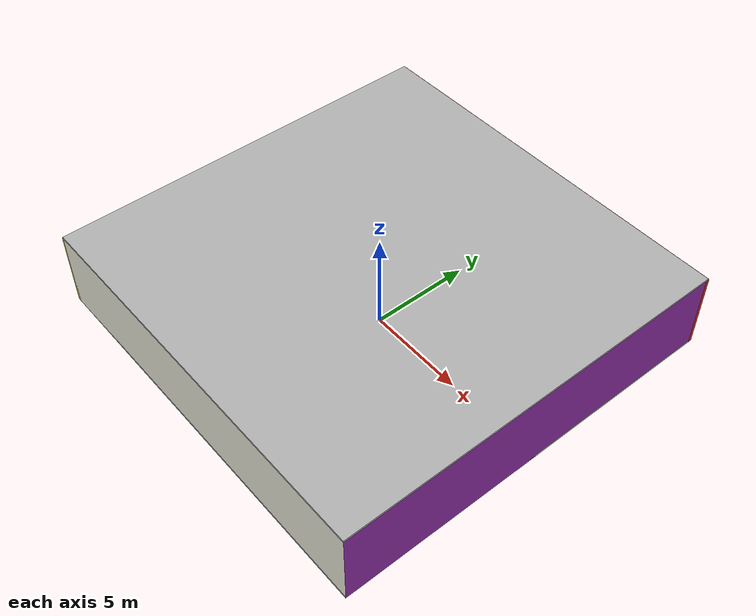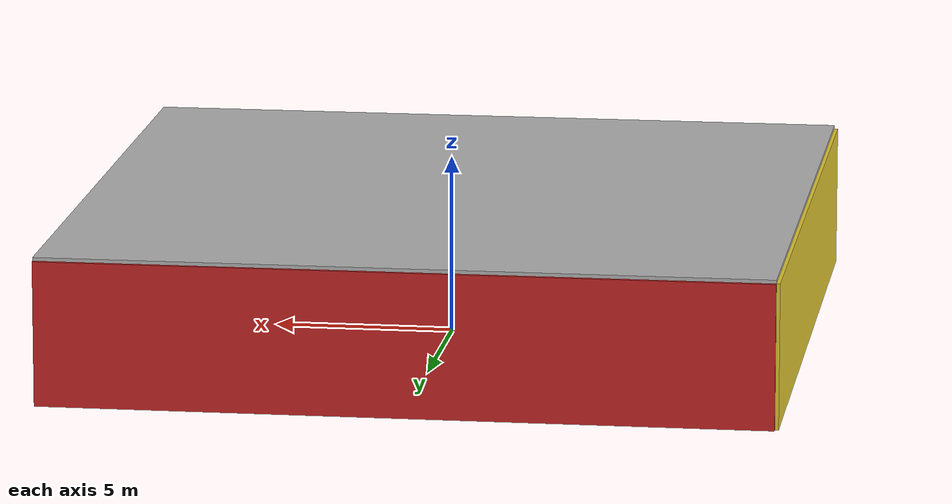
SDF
<sdf version="1.4">
 <world name="default">
  <physics type="ode">
   <max_step_size>0.001</max_step_size>
   <real_time_factor>1</real_time_factor>
   <real_time_update_rate>1000</real_time_update_rate>
   <gravity>0 0 -9.8</gravity>
  </physics>
  <scene><ambient>0.4 0.4 0.4 1</ambient><background>0.7 0.7 0.7 1</background><shadows>1</shadows></scene>
  <model name="Surrounding">
   <static>1</static>
   <link name="Ceiling">
    <collision name="Ceiling_Collision"><geometry><box><size>20 20 0.1</size></box></geometry></collision>
    <visual name="Ceiling_Visual">
     <geometry><box><size>20 20 0.1</size></box></geometry>
     <material>
      <script><uri>file://media/materials/scripts/gazebo.material</uri><name>Gazebo/PioneerBody</name></script>
     </material>
    </visual>
    <pose>0 0 4.05 0 0 0</pose>
   </link>
   <link name="Wall_South">
    <collision name="Wall_South_Collision">
     <geometry><box><size>20 0 4</size></box></geometry>
     <pose>0 0 2 0 -0 0</pose>
    </collision>
    <visual name="Wall_South_Visual">
     <pose>0 0 2 0 -0 0</pose>
     <geometry><box><size>20 0 4</size></box></geometry>
     <material>
      <script><uri>file://media/materials/scripts/gazebo.material</uri><name>Gazebo/PaintedWall</name></script>
     </material>
    </visual>
    <velocity_decay><linear>0</linear><angular>0</angular></velocity_decay>
    <pose>0 -10 0 0 -0 0</pose>
   </link>
   <link name="Wall_East">
    <collision name="Wall_21_Collision">
     <geometry><box><size>20 0 4</size></box></geometry>
     <pose>0 0 2 0 -0 0</pose>
    </collision>
    <visual name="Wall_21_Visual">
     <pose>0 0 2 0 -0 0</pose>
     <geometry><box><size>20 0 4</size></box></geometry>
     <material>
      <script><uri>file://media/materials/scripts/gazebo.material</uri><name>Gazebo/PurpleGlow</name></script>
     </material>
    </visual>
    <velocity_decay><linear>0</linear><angular>0</angular></velocity_decay>
    <pose>10 0 0 0 -0 1.5708</pose>
   </link>
   <link name="Wall_North">
    <collision name="Wall_22_Collision">
     <geometry><box><size>20 0.2 4</size></box></geometry>
     <pose>0 0 2 0 -0 0</pose>
    </collision>
    <visual name="Wall_22_Visual">
     <pose>0 0 2 0 -0 0</pose>
     <geometry><box><size>20 0.2 4</size></box></geometry>
     <material>
      <script><uri>file://media/materials/scripts/gazebo.material</uri><name>Gazebo/Red</name></script>
     </material>
    </visual>
    <velocity_decay><linear>0</linear><angular>0</angular></velocity_decay>
    <pose>0 10 0 0 -0 0</pose>
   </link>
   <link name="Wall_West">
    <collision name="Wall_23_Collision">
     <geometry><box><size>20 0.2 4</size></box></geometry>
     <pose>0 0 2 0 -0 0</pose>
    </collision>
    <visual name="Wall_23_Visual">
     <pose>0 0 2 0 -0 0</pose>
     <geometry><box><size>20 0.2 4</size></box></geometry>
     <material>
      <script><uri>file://media/materials/scripts/gazebo.material</uri><name>Gazebo/ZincYellow</name></script>
     </material>
    </visual>
    <velocity_decay><linear>0</linear><angular>0</angular></velocity_decay>
    <pose>-10 0 0 0 0 -1.5708</pose>
   </link>
   <link name="Ground_link">
    <collision name="collision">
     <pose>0 0 .05 0 -0 0</pose>
     <geometry><box><size>20 20 0.1</size></box></geometry>
    </collision>
    <visual name="visual">
     <pose>0 0 .05 0 -0 0</pose>
     <geometry><box><size>20 20 0.1</size></box></geometry>
     <material>
      <script><uri>file://media/materials/scripts/gazebo.material</uri><name>Gazebo/CloudySky</name></script>
     </material>
    </visual>
   </link>
   <static>1</static>
  </model>
  <spherical_coordinates>
   <surface_model>EARTH_WGS84</surface_model>
   <latitude_deg>0</latitude_deg>
   <longitude_deg>0</longitude_deg>
   <elevation>0</elevation>
   <heading_deg>0</heading_deg>
  </spherical_coordinates>
  <light name="lightball_0" type="diffuse">
   <diffuse>0.8 0.8 0.8 1</diffuse>
   <specular>0.2 0.2 0.2 1</specular>
   <attenuation>
    <range>100</range>
    <constant>0.7</constant>
    <linear>0.01</linear>
    <quadratic>0.001</quadratic>
   </attenuation>
   <direction>-0.5 0.1 -0.9</direction>
   <pose>2.05657497176 2.42225109342 1.89962428459 0 0 0</pose>
  </light>
  <light name="lightball_1" type="diffuse">
   <diffuse>0.8 0.8 0.8 1</diffuse>
   <specular>0.2 0.2 0.2 1</specular>
   <attenuation>
    <range>100</range>
    <constant>0.7</constant>
    <linear>0.01</linear>
    <quadratic>0.001</quadratic>
   </attenuation>
   <direction>-0.5 0.1 -0.9</direction>
   <pose>5.36199896861 7.34956327278 1.38108575092 0 0 0</pose>
  </light>
  <light name="lightball_2" type="diffuse">
   <diffuse>0.8 0.8 0.8 1</diffuse>
   <specular>0.2 0.2 0.2 1</specular>
   <attenuation>
    <range>100</range>
    <constant>0.7</constant>
    <linear>0.01</linear>
    <quadratic>0.001</quadratic>
   </attenuation>
   <direction>-0.5 0.1 -0.9</direction>
   <pose>6.2553272548 4.77966992327 2.33598062053 0 0 0</pose>
  </light>
  <light name="lightball_3" type="diffuse">
   <diffuse>0.8 0.8 0.8 1</diffuse>
   <specular>0.2 0.2 0.2 1</specular>
   <attenuation>
    <range>100</range>
    <constant>0.7</constant>
    <linear>0.01</linear>
    <quadratic>0.001</quadratic>
   </attenuation>
   <direction>-0.5 0.1 -0.9</direction>
   <pose>7.19218878861 0.738622542358 1.62123937928 0 0 0</pose>
  </light>
  <light name="lightball_4" type="diffuse">
   <diffuse>0.8 0.8 0.8 1</diffuse>
   <specular>0.2 0.2 0.2 1</specular>
   <attenuation>
    <range>100</range>
    <constant>0.7</constant>
    <linear>0.01</linear>
    <quadratic>0.001</quadratic>
   </attenuation>
   <direction>-0.5 0.1 -0.9</direction>
   <pose>-5.03457423003 8.58999622289 1.28679521203 0 0 0</pose>
  </light>
  <include><uri>model://cabinet</uri><pose>-7.05218736372 -6.72480582826 0 0 0 0.0552318030013</pose></include>
  <include><uri>model://table</uri><pose>-8.02063558741 -4.38969895936 0 0 0 1.98933206012</pose></include>
  <include>
   <uri>model://robocup_3Dsim_goal</uri>
   <pose>-7.67648241154 6.89423296023 0 0 0 1.50871071911</pose>
  </include>
  <include><uri>model://cabinet</uri><pose>-1.86262620116 5.29804155789 0 0 0 1.02226081001</pose></include>
  <include>
   <uri>model://construction_cone</uri>
   <pose>1.50867402218 -8.17182606962 0 0 0 0.918995344666</pose>
  </include>
  <include>
   <uri>model://robocup_3Dsim_goal</uri>
   <pose>2.24863021054 -0.73812986223 0 0 0 0.474954653798</pose>
  </include>
  <include>
   <uri>model://construction_cone</uri>
   <pose>4.27543467667 -0.863374952473 0 0 0 2.52483265825</pose>
  </include>
  <include><uri>model://cabinet</uri><pose>4.67878287713 1.75202854878 0 0 0 2.19360277532</pose></include>
 </world>
</sdf>

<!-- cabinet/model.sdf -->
<sdf version="1.5">
  <model name="cabinet">
    <static>true</static>
    <link name="cabinet_bottom_plate">
      <inertial>
        <pose>0 0 -1 0 0 0</pose>
        <inertia>
          <ixx>2.050000</ixx>
          <ixy>0</ixy>
          <ixz>0</ixz>
          <iyy>2.050000</iyy>
          <iyz>0</iyz>
          <izz>2.050000</izz>
        </inertia>
        <mass>25.000000</mass>
      </inertial>
      <collision name="cabinet_bottom_plate_geom">
        <pose>0 0 0.010000 0 0 0</pose>
        <geometry>
          <box>
            <size>0.450000 0.450000 0.020000</size>
          </box>
        </geometry>
      </collision>
      <visual name="cabinet_bottom_plate_geom_visual">
        <pose>0 0 0.010000 0 0 0</pose>
        <geometry>
          <box>
            <size>0.450000 0.450000 0.020000</size>
          </box>
        </geometry>
        <material>
          <script>
            <uri>model://media/materials/scripts/gazebo.material</uri>
            <name>Gazebo/Wood</name>
          </script>
        </material>
      </visual>
      <collision name="cabinet_bottom_plate_geom_cabinet_back_plate">
        <pose>0.235000 0 0.510000 0 0 0</pose>
        <geometry>
          <box>
            <size>0.020000 0.450000 1.020000</size>
          </box>
        </geometry>
      </collision>
      <visual name="cabinet_bottom_plate_geom_cabinet_back_plate_visual">
        <pose>0.235000 0 0.510000 0 0 0</pose>
        <geometry>
          <box>
            <size>0.020000 0.450000 1.020000</size>
          </box>
        </geometry>
        <material>
          <script>
            <uri>model://media/materials/scripts/gazebo.material</uri>
            <name>Gazebo/Wood</name>
          </script>
        </material>
      </visual>
      <collision name="cabinet_bottom_plate_geom_cabinet_left_plate">
        <pose>0 0.235000 0.510000 0 0 0</pose>
        <geometry>
          <box>
            <size>0.450000 0.020000 1.020000</size>
          </box>
        </geometry>
      </collision>
      <visual name="cabinet_bottom_plate_geom_cabinet_left_plate_visual">
        <pose>0 0.235000 0.510000 0 0 0</pose>
        <geometry>
          <box>
            <size>0.450000 0.020000 1.020000</size>
          </box>
        </geometry>
        <material>
          <script>
            <uri>model://media/materials/scripts/gazebo.material</uri>
            <name>Gazebo/Wood</name>
          </script>
        </material>
      </visual>
      <collision name="cabinet_bottom_plate_geom_cabinet_middle_plate">
        <pose>0 0 0.510000 0 0 0</pose>
        <geometry>
          <box>
            <size>0.450000 0.450000 0.020000</size>
          </box>
        </geometry>
      </collision>
      <visual name="cabinet_bottom_plate_geom_cabinet_middle_plate_visual">
        <pose>0 0 0.510000 0 0 0</pose>
        <geometry>
          <box>
            <size>0.450000 0.450000 0.020000</size>
          </box>
        </geometry>
        <material>
          <script>
            <uri>model://media/materials/scripts/gazebo.material</uri>
            <name>Gazebo/Wood</name>
          </script>
        </material>
      </visual>
      <collision name="cabinet_bottom_plate_geom_cabinet_right_plate">
        <pose>0 -0.235000 0.510000 0 0 0</pose>
        <geometry>
          <box>
            <size>0.450000 0.020000 1.020000</size>
          </box>
        </geometry>
      </collision>
      <visual name="cabinet_bottom_plate_geom_cabinet_right_plate_visual">
        <pose>0 -0.235000 0.510000 0 0 0</pose>
        <geometry>
          <box>
            <size>0.450000 0.020000 1.020000</size>
          </box>
        </geometry>
        <material>
          <script>
            <uri>model://media/materials/scripts/gazebo.material</uri>
            <name>Gazebo/Wood</name>
          </script>
        </material>
      </visual>
      <collision name="cabinet_bottom_plate_geom_cabinet_top_plate">
        <pose>0 0 1.010000 0 0 0</pose>
        <geometry>
          <box>
            <size>0.450000 0.450000 0.020000</size>
          </box>
        </geometry>
      </collision>
      <visual name="cabinet_bottom_plate_geom_cabinet_top_plate_visual">
        <pose>0 0 1.010000 0 0 0</pose>
        <geometry>
          <box>
            <size>0.450000 0.450000 0.020000</size>
          </box>
        </geometry>
        <material>
          <script>
            <uri>model://media/materials/scripts/gazebo.material</uri>
            <name>Gazebo/Wood</name>
          </script>
        </material>
      </visual>
    </link>
  </model>
</sdf>

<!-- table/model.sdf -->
<sdf version="1.5">
  <model name="table">
    <static>true</static>
    <link name="link">
      <collision name="surface">
        <pose>0 0 1.0 0 0 0</pose>
        <geometry>
          <box>
            <size>1.5 0.8 0.03</size>
          </box>
        </geometry>
        <surface>
          <friction>
            <ode>
              <mu>0.6</mu>
              <mu2>0.6</mu2>
            </ode>
          </friction>
        </surface>
      </collision>
      <visual name="visual1">
        <pose>0 0 1.0 0 0 0</pose>
        <geometry>
          <box>
            <size>1.5 0.8 0.03</size>
          </box>
        </geometry>
        <material>
          <script>
            <uri>model://media/materials/scripts/gazebo.material</uri>
            <name>Gazebo/Wood</name>
          </script>
        </material>
      </visual>
      <collision name="front_left_leg">
        <pose>0.68 0.38 0.5 0 0 0</pose>
        <geometry>
          <cylinder>
            <radius>0.02</radius>
            <length>1.0</length>
          </cylinder>
        </geometry>
      </collision>
      <visual name="front_left_leg">
        <pose>0.68 0.38 0.5 0 0 0</pose>
        <geometry>
          <cylinder>
            <radius>0.02</radius>
            <length>1.0</length>
          </cylinder>
        </geometry>
        <material>
          <script>
            <uri>model://media/materials/scripts/gazebo.material</uri>
            <name>Gazebo/Grey</name>
          </script>
        </material>
      </visual>
      <collision name="front_right_leg">
        <pose>0.68 -0.38 0.5 0 0 0</pose>
        <geometry>
          <cylinder>
            <radius>0.02</radius>
            <length>1.0</length>
          </cylinder>
        </geometry>
      </collision>
      <visual name="front_right_leg">
        <pose>0.68 -0.38 0.5 0 0 0</pose>
        <geometry>
          <cylinder>
            <radius>0.02</radius>
            <length>1.0</length>
          </cylinder>
        </geometry>
        <material>
          <script>
            <uri>model://media/materials/scripts/gazebo.material</uri>
            <name>Gazebo/Grey</name>
          </script>
        </material>
      </visual>
      <collision name="back_right_leg">
        <pose>-0.68 -0.38 0.5 0 0 0</pose>
        <geometry>
          <cylinder>
            <radius>0.02</radius>
            <length>1.0</length>
          </cylinder>
        </geometry>
      </collision>
      <visual name="back_right_leg">
        <pose>-0.68 -0.38 0.5 0 0 0</pose>
        <geometry>
          <cylinder>
            <radius>0.02</radius>
            <length>1.0</length>
          </cylinder>
        </geometry>
        <material>
          <script>
            <uri>model://media/materials/scripts/gazebo.material</uri>
            <name>Gazebo/Grey</name>
          </script>
        </material>
      </visual>
      <collision name="back_left_leg">
        <pose>-0.68 0.38 0.5 0 0 0</pose>
        <geometry>
          <cylinder>
            <radius>0.02</radius>
            <length>1.0</length>
          </cylinder>
        </geometry>
      </collision>
      <visual name="back_left_leg">
        <pose>-0.68 0.38 0.5 0 0 0</pose>
        <geometry>
          <cylinder>
            <radius>0.02</radius>
            <length>1.0</length>
          </cylinder>
        </geometry>
        <material>
          <script>
            <uri>model://media/materials/scripts/gazebo.material</uri>
            <name>Gazebo/Grey</name>
          </script>
        </material>
      </visual>
    </link>
  </model>
</sdf>

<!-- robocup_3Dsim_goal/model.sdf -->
<sdf version="1.5">
  <model name="robocup_3d_goal">
    <static>true</static>
    <link name="left_post">
      <pose>0 1.05 0.45 0 0 0</pose>
      <collision name="collision">
        <geometry>
          <cylinder>
            <radius>0.05</radius>
            <length>0.9</length>
          </cylinder>
        </geometry>
      </collision>
      <visual name="visual">
        <geometry>
          <cylinder>
            <radius>0.05</radius>
            <length>0.9</length>
          </cylinder>
        </geometry>
        <material>
          <script>
            <uri>file://media/materials/scripts/gazebo.material</uri>
            <name>Gazebo/ZincYellow</name>
          </script>
        </material>
      </visual>
    </link>
    <link name="left_support_horiz_lower">
      <pose>0.30 1.05 0.01 0 0 0</pose>
      <collision name="collision">
        <geometry>
          <box>
            <size>0.50 0.02 0.02</size>
          </box>
        </geometry>
      </collision>
      <visual name="visual">
        <geometry>
          <box>
            <size>0.50 0.02 0.02</size>
          </box>
        </geometry>
        <material>
          <script>
            <uri>file://media/materials/scripts/gazebo.material</uri>
            <name>Gazebo/White</name>
          </script>
        </material>
      </visual>
    </link>
    <link name="left_support_horiz_upper">
      <pose>0.30 1.05 0.79 0 0 0</pose>
      <collision name="collision">
        <geometry>
          <box>
            <size>0.50 0.02 0.02</size>
          </box>
        </geometry>
      </collision>
      <visual name="visual">
        <geometry>
          <box>
            <size>0.50 0.02 0.02</size>
          </box>
        </geometry>
        <material>
          <script>
            <uri>file://media/materials/scripts/gazebo.material</uri>
            <name>Gazebo/White</name>
          </script>
        </material>
      </visual>
    </link>
    <link name="left_support_vertical">
      <pose>0.56 1.05 0.4 0 1.5708 0</pose>
      <collision name="collision">
        <geometry>
          <box>
            <size>0.80 0.02 0.02</size>
          </box>
        </geometry>
      </collision>
      <visual name="visual">
        <geometry>
          <box>
            <size>0.80 0.02 0.02</size>
          </box>
        </geometry>
        <material>
          <script>
            <uri>file://media/materials/scripts/gazebo.material</uri>
            <name>Gazebo/White</name>
          </script>
        </material>
      </visual>
    </link>
    <link name="right_support_horiz_lower">
      <pose>0.30 -1.05 0.01 0 0 0</pose>
      <collision name="collision">
        <geometry>
          <box>
            <size>0.50 0.02 0.02</size>
          </box>
        </geometry>
      </collision>
      <visual name="visual">
        <geometry>
          <box>
            <size>0.50 0.02 0.02</size>
          </box>
        </geometry>
        <material>
          <script>
            <uri>file://media/materials/scripts/gazebo.material</uri>
            <name>Gazebo/White</name>
          </script>
        </material>
      </visual>
    </link>
    <link name="right_support_horiz_upper">
      <pose>0.30 -1.05 0.79 0 0 0</pose>
      <collision name="collision">
        <geometry>
          <box>
            <size>0.50 0.02 0.02</size>
          </box>
        </geometry>
      </collision>
      <visual name="visual">
        <geometry>
          <box>
            <size>0.50 0.02 0.02</size>
          </box>
        </geometry>
        <material>
          <script>
            <uri>file://media/materials/scripts/gazebo.material</uri>
            <name>Gazebo/White</name>
          </script>
        </material>
      </visual>
    </link>
    <link name="right_support_vertical">
      <pose>0.56 -1.05 0.4 0 1.5708 0</pose>
      <collision name="collision">
        <geometry>
          <box>
            <size>0.80 0.02 0.02</size>
          </box>
        </geometry>
      </collision>
      <visual name="visual">
        <geometry>
          <box>
            <size>0.80 0.02 0.02</size>
          </box>
        </geometry>
        <material>
          <script>
            <uri>file://media/materials/scripts/gazebo.material</uri>
            <name>Gazebo/White</name>
          </script>
        </material>
      </visual>
    </link>
    <link name="center_support_horiz_lower">
      <pose>0.56 0 0.01 0 1.5708 0</pose>
      <collision name="collision">
        <geometry>
          <box>
            <size>0.02 2.08 0.02</size>
          </box>
        </geometry>
      </collision>
      <visual name="visual">
        <geometry>
          <box>
            <size>0.02 2.08 0.02</size>
          </box>
        </geometry>
        <material>
          <script>
            <uri>file://media/materials/scripts/gazebo.material</uri>
            <name>Gazebo/White</name>
          </script>
        </material>
      </visual>
    </link>
    <link name="center_support_horiz_upper">
      <pose>0.56 0 0.79 0 1.5708 0</pose>
      <collision name="collision">
        <geometry>
          <box>
            <size>0.02 2.08 0.02</size>
          </box>
        </geometry>
      </collision>
      <visual name="visual">
        <geometry>
          <box>
            <size>0.02 2.08 0.02</size>
          </box>
        </geometry>
        <material>
          <script>
            <uri>file://media/materials/scripts/gazebo.material</uri>
            <name>Gazebo/White</name>
          </script>
        </material>
      </visual>
    </link>
    <link name="right_post">
      <pose>0 -1.05 0.45 0 0 0</pose>
      <collision name="collision">
        <geometry>
          <cylinder>
            <radius>0.05</radius>
            <length>0.9</length>
          </cylinder>
        </geometry>
      </collision>
      <visual name="visual">
        <geometry>
          <cylinder>
            <radius>0.05</radius>
            <length>0.9</length>
          </cylinder>
        </geometry>
        <material>
          <script>
            <uri>file://media/materials/scripts/gazebo.material</uri>
            <name>Gazebo/ZincYellow</name>
          </script>
        </material>
      </visual>
    </link>
    <link name="crossbar">
      <pose>0 0 0.85 1.57 1.57 0</pose>
      <collision name="collision">
        <geometry>
          <cylinder>
            <radius>0.05</radius>
            <length>2.0</length>
          </cylinder>
        </geometry>
      </collision>
      <visual name="visual">
        <geometry>
          <cylinder>
            <radius>0.05</radius>
            <length>2.0</length>
          </cylinder>
        </geometry>
        <material>
          <script>
            <uri>file://media/materials/scripts/gazebo.material</uri>
            <name>Gazebo/ZincYellow</name>
          </script>
        </material>
      </visual>
    </link>
    <link name="center_net">
      <pose>0.56 0 0.40 0 0 0</pose>
      <collision name="collision">
        <geometry>
          <box>
            <size>0.01 2.1 0.80</size>
          </box>
        </geometry>
      </collision>
      <visual name="visual">
        <geometry>
          <box>
            <size>0.01 2.1 0.80</size>
          </box>
        </geometry>
        <material>
          <script>
            <uri>model://../model_source/models/robocup09_spl_field/materials/scripts/</uri>
            <uri>model://../model_source/models/robocup09_spl_field/materials/textures/</uri>
            <name>RoboCup/Net</name>
          </script>
        </material>
      </visual>
    </link>
    <link name="left_net">
      <pose>0.30 1.05 0.40 0 0 0</pose>
      <collision name="collision">
        <geometry>
          <box>
            <size>0.50 0.01 0.76</size>
          </box>
        </geometry>
      </collision>
      <visual name="visual">
        <geometry>
          <box>
            <size>0.50 0.01 0.76</size>
          </box>
        </geometry>
        <material>
          <script>
            <uri>model://../model_source/models/robocup09_spl_field/materials/scripts/</uri>
            <uri>model://../model_source/models/robocup09_spl_field/materials/textures/</uri>
            <name>RoboCup/Net</name>
          </script>
        </material>
      </visual>
    </link>
    <link name="right_net">
      <pose>0.30 -1.05 0.40 0 0 0</pose>
      <collision name="collision">
        <geometry>
          <box>
            <size>0.50 0.01 0.76</size>
          </box>
        </geometry>
      </collision>
      <visual name="visual">
        <geometry>
          <box>
            <size>0.50 0.01 0.76</size>
          </box>
        </geometry>
        <material>
          <script>
            <uri>model://../model_source/models/robocup09_spl_field/materials/scripts/</uri>
            <uri>model://../model_source/models/robocup09_spl_field/materials/textures/</uri>
            <name>RoboCup/Net</name>
          </script>
        </material>
      </visual>
    </link>
  </model>
</sdf>

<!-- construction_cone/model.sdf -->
<sdf version="1.5">
  <model name="Construction Cone">
    <link name="link">
      <collision name="collision">
        <geometry>
          <mesh>
            <scale>10 10 10</scale>
            <uri>file://isr-testbed/construction_cone/meshes/construction_cone.dae</uri>
          </mesh>
        </geometry>
      </collision>
      <visual name="visual">
        <geometry>
          <mesh>
            <scale>10 10 10</scale>
            <uri>file://isr-testbed/construction_cone/meshes/construction_cone.dae</uri>
          </mesh>
        </geometry>
      </visual>
    </link>
  </model>
</sdf>
